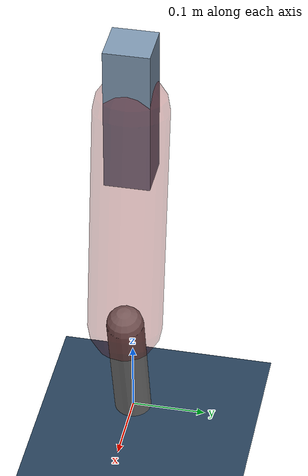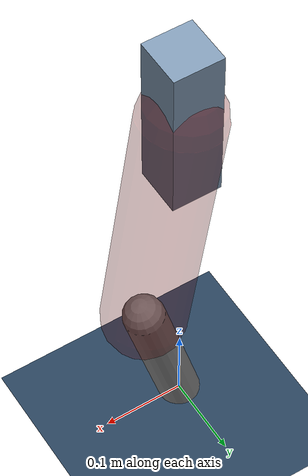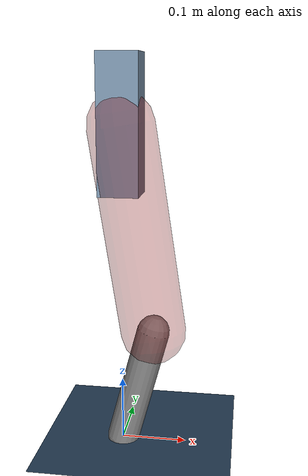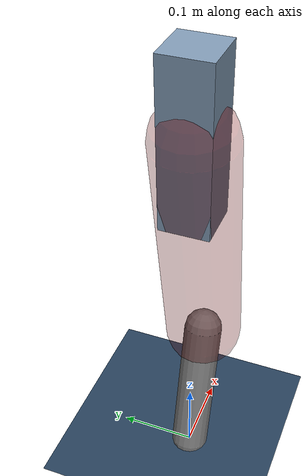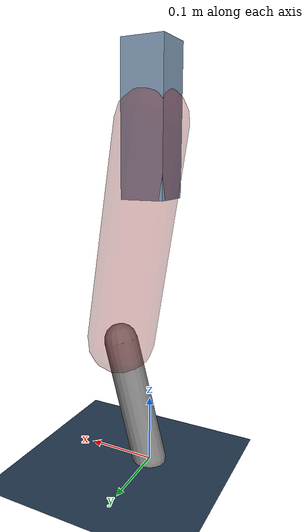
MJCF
<mujoco model="Hopper2D">
	<compiler inertiafromgeom="true" angle="radian" />
	<option timestep="0.001" integrator="implicit" cone="elliptic" solver="Newton" tolerance="1e-10" />

	<default>
		<geom contype="1" conaffinity="1" condim="3" friction="2 0.005 0.0001" solref="0.005 1" />
		<joint limited="true" damping="0.1" />
	</default>

	<asset>
		<texture name="skybox" type="skybox" builtin="gradient" rgb1=".4 .6 .8" rgb2="0 0 0" width="800" height="800" />
		<texture name="grid" type="2d" builtin="checker" rgb1=".1 .2 .3" rgb2=".2 .3 .4" width="300" height="300" mark="edge" markrgb=".2 .3 .4" />
		<material name="ground" texture="grid" texrepeat="1 1" texuniform="true" reflectance="0.1" />
		<material name="leg" rgba="0.5 0.6 0.7 1" />
	</asset>

	<worldbody>

		<geom name="floor" type="plane" size="5 5 0.25" material="ground" />

		<light directional="false" diffuse="0.8 0.8 0.8" specular="0.3 0.3 0.3" pos="0 0 2" dir="0 0 -1" />
		<light mode="targetbodycom" target="base" directional="false" diffuse="0.8 0.8 0.8" specular="0.3 0.3 0.3" pos="0 0 2" dir="0 0 -1" />

		<camera name="fixed" pos="0 -2 1" xyaxes="1 0 0 0 0 1" />
		<camera name="tracking" mode="trackcom" pos="0 -3 1" />

		<body name="root" pos="0 0 0.4927917328443995">
			<joint name="slide_x" type="slide" axis="1 0 0" range="-100 100" />
			<joint name="slide_z" type="slide" axis="0 0 1" range="0 10" />

			<body name="base" pos="0 0 0">
				<geom name="torso" type="box" size="0.03 0.03 0.1" mass="2.404" material="leg" />

				<body name="link1" pos="0 0 0" euler="0 1.4163401108319933 0">
					<joint type="hinge" axis="0 -1 0" pos="0 0 0" name="hinge1" limited="true" range="-3.14 3.14" stiffness="0" damping="0.1" />
					<geom name="thigh" type="capsule" fromto="0 0 0 0.31373716720475797 0 0" size="0.05" rgba="0.5 0 0 0.3" mass="1.0260903514528465" />

					<body name="link2" pos="0.31373716720475797 0 0" euler="0 0.4126173468869967 0">
						<joint type="hinge" axis="0 -1 0" pos="0 0 0" name="hinge2" limited="true" range="-3.14 3.14" stiffness="0" damping="0.1" />
						<geom name="shank" type="capsule" fromto="0 0 0 0.18905456563964151 0 0" size="0.025" mass="0.39164365251171324" />

					</body>
				</body>
			</body>
		</body>
	</worldbody>

	<actuator>
		<motor name="torque1" joint="hinge1" ctrlrange="-88.09350049553876 88.09350049553876" ctrllimited="true" gear="1" />
		<motor name="torque2" joint="hinge2" ctrlrange="-87.37725501125463 87.37725501125463" ctrllimited="true" gear="1" />
	</actuator>
</mujoco>
